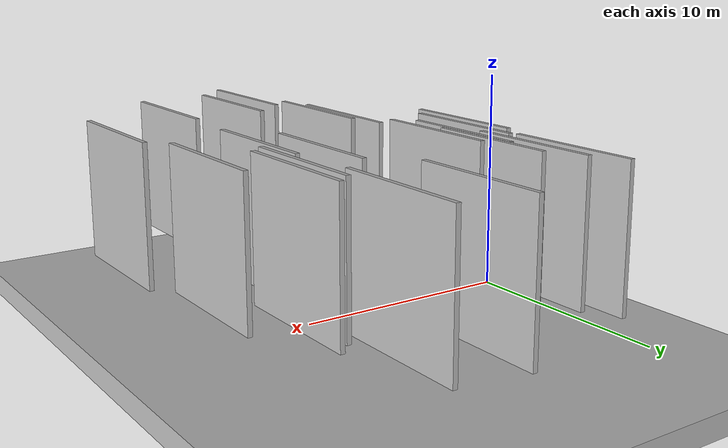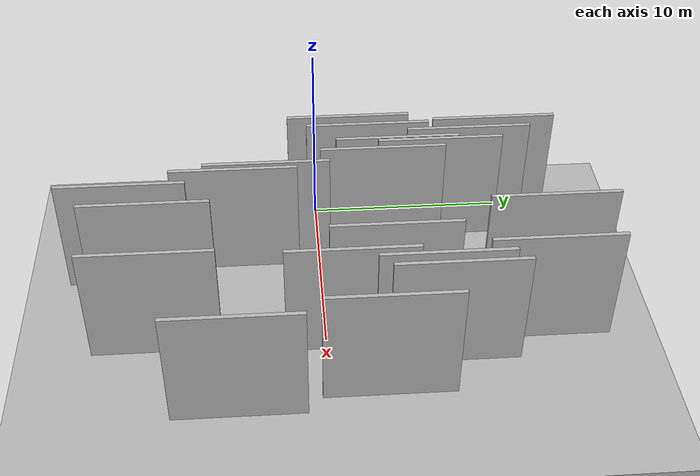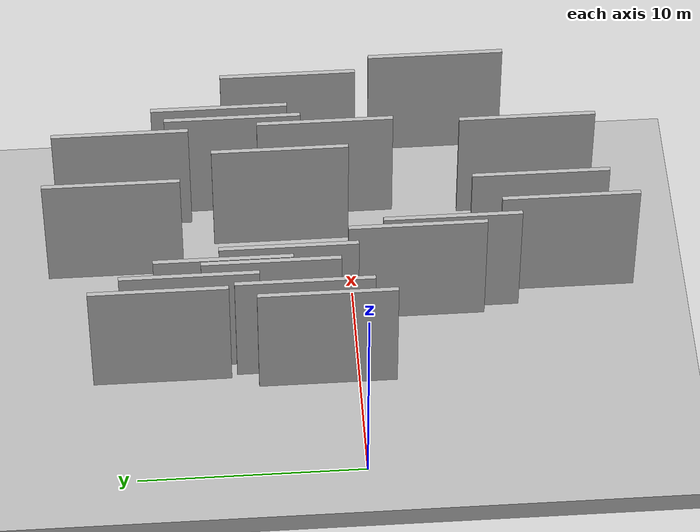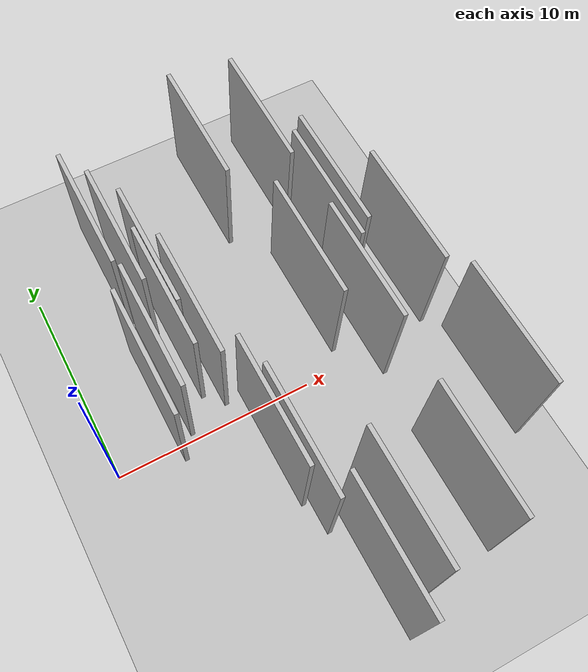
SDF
<?xml version="1.0" encoding="utf-8"?>

<sdf version="1.6">

   <world name="default">

      <gui fullscreen="0">

         <camera name="user_camera">

            <pose>-15 0 4.57585 0 0 0</pose>

            <view_controller>orbit</view_controller>

         </camera>

      </gui>

      <scene>

         <sky>

           <clouds>

             <speed>12</speed>

           </clouds>

         </sky>

         <ambient>0.4 0.4 0.4 1</ambient>

         <background>0.7 0.7 0.7 1</background>

         <shadows>1</shadows>

      </scene>

      <gravity>0 0 -9.8066</gravity>

      <magnetic_field>6e-06 2.3e-05 -4.2e-05</magnetic_field>

      <physics default="0" name="default_physics" type="ode">

         <ode>

            <solver>

               <type>quick</type>

               <iters>10</iters>

               <sor>1.0</sor>

               <use_dynamic_moi_rescaling>0</use_dynamic_moi_rescaling>

            </solver>

            <constraints>

               <cfm>0</cfm>

               <erp>0.2</erp>

               <contact_max_correcting_vel>100</contact_max_correcting_vel>

               <contact_surface_layer>0.001</contact_surface_layer>

            </constraints>

         </ode>

         <max_step_size>0.004</max_step_size>

         <real_time_factor>1</real_time_factor>

         <real_time_update_rate>250</real_time_update_rate>

      </physics>

      <light name="sun" type="directional">

         <cast_shadows>1</cast_shadows>

         <pose>0 0 10 0 0 0</pose>

         <diffuse>0.8 0.8 0.8 1</diffuse>

         <specular>0.2 0.2 0.2 1</specular>

         <attenuation>

            <range>1000</range>

            <constant>0.9</constant>

            <linear>0.01</linear>

            <quadratic>0.001</quadratic>

         </attenuation>

         <direction>-0.5 0.1 -0.9</direction>

      </light>

      <include>

         <name>ground_plane_1</name>

         <uri>model://HANNAS_ground_plane</uri>

         <pose>0 0 0  0 0 0</pose>

      </include>

      <include>

         <name>ground_plane_2</name>

         <uri>model://HANNAS_ground_plane</uri>

         <pose>100 0 0  0 0 0</pose>

      </include>

      <model name="HANNAS_wall_1">

         <static>1</static>

         <pose frame="">5.1587 5.8665 2.5 0.000000 0.000000 1.570796</pose>

         <link name="link">

            <pose frame="">0 0 3.00 0 0 0</pose>

            <collision name="collision">

               <geometry>

                  <box>

                     <size>6.00 0.2 6.00</size>

                  </box>

               </geometry>

               <max_contacts>10</max_contacts>

               <surface>

                  <contact>

                     <ode/>

                  </contact>

                  <bounce/>

                  <friction>

                     <torsional>

                        <ode/>

                     </torsional>

                     <ode/>

                  </friction>

               </surface>

            </collision>

            <visual name="visual">

               <cast_shadows>0</cast_shadows>

               <geometry>

                  <box>

                     <size>6.00 0.2 6.00</size>

                  </box>

               </geometry>

               <material>

                  <script>

                     <uri>model://HANNAS_wall/materials/scripts</uri>

                     <uri>model://HANNAS_wall/materials/textures</uri>

                     <name>vrc/HANNAS_wall</name>

                  </script>

               </material>

            </visual>

            <self_collide>0</self_collide>

            <enable_wind>0</enable_wind>

            <kinematic>0</kinematic>

         </link>

      </model>

      <model name="HANNAS_wall_2">

         <static>1</static>

         <pose frame="">6.9605 -4.1079 2.5 0.000000 0.000000 1.570796</pose>

         <link name="link">

            <pose frame="">0 0 3.00 0 0 0</pose>

            <collision name="collision">

               <geometry>

                  <box>

                     <size>6.00 0.2 6.00</size>

                  </box>

               </geometry>

               <max_contacts>10</max_contacts>

               <surface>

                  <contact>

                     <ode/>

                  </contact>

                  <bounce/>

                  <friction>

                     <torsional>

                        <ode/>

                     </torsional>

                     <ode/>

                  </friction>

               </surface>

            </collision>

            <visual name="visual">

               <cast_shadows>0</cast_shadows>

               <geometry>

                  <box>

                     <size>6.00 0.2 6.00</size>

                  </box>

               </geometry>

               <material>

                  <script>

                     <uri>model://HANNAS_wall/materials/scripts</uri>

                     <uri>model://HANNAS_wall/materials/textures</uri>

                     <name>vrc/HANNAS_wall</name>

                  </script>

               </material>

            </visual>

            <self_collide>0</self_collide>

            <enable_wind>0</enable_wind>

            <kinematic>0</kinematic>

         </link>

      </model>

      <model name="HANNAS_wall_3">

         <static>1</static>

         <pose frame="">3.0186 1.5339 2.5 0.000000 0.000000 1.570796</pose>

         <link name="link">

            <pose frame="">0 0 3.00 0 0 0</pose>

            <collision name="collision">

               <geometry>

                  <box>

                     <size>6.00 0.2 6.00</size>

                  </box>

               </geometry>

               <max_contacts>10</max_contacts>

               <surface>

                  <contact>

                     <ode/>

                  </contact>

                  <bounce/>

                  <friction>

                     <torsional>

                        <ode/>

                     </torsional>

                     <ode/>

                  </friction>

               </surface>

            </collision>

            <visual name="visual">

               <cast_shadows>0</cast_shadows>

               <geometry>

                  <box>

                     <size>6.00 0.2 6.00</size>

                  </box>

               </geometry>

               <material>

                  <script>

                     <uri>model://HANNAS_wall/materials/scripts</uri>

                     <uri>model://HANNAS_wall/materials/textures</uri>

                     <name>vrc/HANNAS_wall</name>

                  </script>

               </material>

            </visual>

            <self_collide>0</self_collide>

            <enable_wind>0</enable_wind>

            <kinematic>0</kinematic>

         </link>

      </model>

      <model name="HANNAS_wall_4">

         <static>1</static>

         <pose frame="">9.2179 -8.1273 2.5 0.000000 0.000000 1.570796</pose>

         <link name="link">

            <pose frame="">0 0 3.00 0 0 0</pose>

            <collision name="collision">

               <geometry>

                  <box>

                     <size>6.00 0.2 6.00</size>

                  </box>

               </geometry>

               <max_contacts>10</max_contacts>

               <surface>

                  <contact>

                     <ode/>

                  </contact>

                  <bounce/>

                  <friction>

                     <torsional>

                        <ode/>

                     </torsional>

                     <ode/>

                  </friction>

               </surface>

            </collision>

            <visual name="visual">

               <cast_shadows>0</cast_shadows>

               <geometry>

                  <box>

                     <size>6.00 0.2 6.00</size>

                  </box>

               </geometry>

               <material>

                  <script>

                     <uri>model://HANNAS_wall/materials/scripts</uri>

                     <uri>model://HANNAS_wall/materials/textures</uri>

                     <name>vrc/HANNAS_wall</name>

                  </script>

               </material>

            </visual>

            <self_collide>0</self_collide>

            <enable_wind>0</enable_wind>

            <kinematic>0</kinematic>

         </link>

      </model>

      <model name="HANNAS_wall_5">

         <static>1</static>

         <pose frame="">12.8485 1.0567 2.5 0.000000 0.000000 1.570796</pose>

         <link name="link">

            <pose frame="">0 0 3.00 0 0 0</pose>

            <collision name="collision">

               <geometry>

                  <box>

                     <size>6.00 0.2 6.00</size>

                  </box>

               </geometry>

               <max_contacts>10</max_contacts>

               <surface>

                  <contact>

                     <ode/>

                  </contact>

                  <bounce/>

                  <friction>

                     <torsional>

                        <ode/>

                     </torsional>

                     <ode/>

                  </friction>

               </surface>

            </collision>

            <visual name="visual">

               <cast_shadows>0</cast_shadows>

               <geometry>

                  <box>

                     <size>6.00 0.2 6.00</size>

                  </box>

               </geometry>

               <material>

                  <script>

                     <uri>model://HANNAS_wall/materials/scripts</uri>

                     <uri>model://HANNAS_wall/materials/textures</uri>

                     <name>vrc/HANNAS_wall</name>

                  </script>

               </material>

            </visual>

            <self_collide>0</self_collide>

            <enable_wind>0</enable_wind>

            <kinematic>0</kinematic>

         </link>

      </model>

      <model name="HANNAS_wall_6">

         <static>1</static>

         <pose frame="">6.5647 -2.5653 2.5 0.000000 0.000000 1.570796</pose>

         <link name="link">

            <pose frame="">0 0 3.00 0 0 0</pose>

            <collision name="collision">

               <geometry>

                  <box>

                     <size>6.00 0.2 6.00</size>

                  </box>

               </geometry>

               <max_contacts>10</max_contacts>

               <surface>

                  <contact>

                     <ode/>

                  </contact>

                  <bounce/>

                  <friction>

                     <torsional>

                        <ode/>

                     </torsional>

                     <ode/>

                  </friction>

               </surface>

            </collision>

            <visual name="visual">

               <cast_shadows>0</cast_shadows>

               <geometry>

                  <box>

                     <size>6.00 0.2 6.00</size>

                  </box>

               </geometry>

               <material>

                  <script>

                     <uri>model://HANNAS_wall/materials/scripts</uri>

                     <uri>model://HANNAS_wall/materials/textures</uri>

                     <name>vrc/HANNAS_wall</name>

                  </script>

               </material>

            </visual>

            <self_collide>0</self_collide>

            <enable_wind>0</enable_wind>

            <kinematic>0</kinematic>

         </link>

      </model>

      <model name="HANNAS_wall_7">

         <static>1</static>

         <pose frame="">3.7384 2.4550 2.5 0.000000 0.000000 1.570796</pose>

         <link name="link">

            <pose frame="">0 0 3.00 0 0 0</pose>

            <collision name="collision">

               <geometry>

                  <box>

                     <size>6.00 0.2 6.00</size>

                  </box>

               </geometry>

               <max_contacts>10</max_contacts>

               <surface>

                  <contact>

                     <ode/>

                  </contact>

                  <bounce/>

                  <friction>

                     <torsional>

                        <ode/>

                     </torsional>

                     <ode/>

                  </friction>

               </surface>

            </collision>

            <visual name="visual">

               <cast_shadows>0</cast_shadows>

               <geometry>

                  <box>

                     <size>6.00 0.2 6.00</size>

                  </box>

               </geometry>

               <material>

                  <script>

                     <uri>model://HANNAS_wall/materials/scripts</uri>

                     <uri>model://HANNAS_wall/materials/textures</uri>

                     <name>vrc/HANNAS_wall</name>

                  </script>

               </material>

            </visual>

            <self_collide>0</self_collide>

            <enable_wind>0</enable_wind>

            <kinematic>0</kinematic>

         </link>

      </model>

      <model name="HANNAS_wall_8">

         <static>1</static>

         <pose frame="">3.5596 8.6978 2.5 0.000000 0.000000 1.570796</pose>

         <link name="link">

            <pose frame="">0 0 3.00 0 0 0</pose>

            <collision name="collision">

               <geometry>

                  <box>

                     <size>6.00 0.2 6.00</size>

                  </box>

               </geometry>

               <max_contacts>10</max_contacts>

               <surface>

                  <contact>

                     <ode/>

                  </contact>

                  <bounce/>

                  <friction>

                     <torsional>

                        <ode/>

                     </torsional>

                     <ode/>

                  </friction>

               </surface>

            </collision>

            <visual name="visual">

               <cast_shadows>0</cast_shadows>

               <geometry>

                  <box>

                     <size>6.00 0.2 6.00</size>

                  </box>

               </geometry>

               <material>

                  <script>

                     <uri>model://HANNAS_wall/materials/scripts</uri>

                     <uri>model://HANNAS_wall/materials/textures</uri>

                     <name>vrc/HANNAS_wall</name>

                  </script>

               </material>

            </visual>

            <self_collide>0</self_collide>

            <enable_wind>0</enable_wind>

            <kinematic>0</kinematic>

         </link>

      </model>

      <model name="HANNAS_wall_9">

         <static>1</static>

         <pose frame="">7.8035 -9.3064 2.5 0.000000 0.000000 1.570796</pose>

         <link name="link">

            <pose frame="">0 0 3.00 0 0 0</pose>

            <collision name="collision">

               <geometry>

                  <box>

                     <size>6.00 0.2 6.00</size>

                  </box>

               </geometry>

               <max_contacts>10</max_contacts>

               <surface>

                  <contact>

                     <ode/>

                  </contact>

                  <bounce/>

                  <friction>

                     <torsional>

                        <ode/>

                     </torsional>

                     <ode/>

                  </friction>

               </surface>

            </collision>

            <visual name="visual">

               <cast_shadows>0</cast_shadows>

               <geometry>

                  <box>

                     <size>6.00 0.2 6.00</size>

                  </box>

               </geometry>

               <material>

                  <script>

                     <uri>model://HANNAS_wall/materials/scripts</uri>

                     <uri>model://HANNAS_wall/materials/textures</uri>

                     <name>vrc/HANNAS_wall</name>

                  </script>

               </material>

            </visual>

            <self_collide>0</self_collide>

            <enable_wind>0</enable_wind>

            <kinematic>0</kinematic>

         </link>

      </model>

      <model name="HANNAS_wall_10">

         <static>1</static>

         <pose frame="">11.3080 3.1218 2.5 0.000000 0.000000 1.570796</pose>

         <link name="link">

            <pose frame="">0 0 3.00 0 0 0</pose>

            <collision name="collision">

               <geometry>

                  <box>

                     <size>6.00 0.2 6.00</size>

                  </box>

               </geometry>

               <max_contacts>10</max_contacts>

               <surface>

                  <contact>

                     <ode/>

                  </contact>

                  <bounce/>

                  <friction>

                     <torsional>

                        <ode/>

                     </torsional>

                     <ode/>

                  </friction>

               </surface>

            </collision>

            <visual name="visual">

               <cast_shadows>0</cast_shadows>

               <geometry>

                  <box>

                     <size>6.00 0.2 6.00</size>

                  </box>

               </geometry>

               <material>

                  <script>

                     <uri>model://HANNAS_wall/materials/scripts</uri>

                     <uri>model://HANNAS_wall/materials/textures</uri>

                     <name>vrc/HANNAS_wall</name>

                  </script>

               </material>

            </visual>

            <self_collide>0</self_collide>

            <enable_wind>0</enable_wind>

            <kinematic>0</kinematic>

         </link>

      </model>

      <model name="HANNAS_wall_11">

         <static>1</static>

         <pose frame="">13.9393 5.6763 2.5 0.000000 0.000000 1.570796</pose>

         <link name="link">

            <pose frame="">0 0 3.00 0 0 0</pose>

            <collision name="collision">

               <geometry>

                  <box>

                     <size>6.00 0.2 6.00</size>

                  </box>

               </geometry>

               <max_contacts>10</max_contacts>

               <surface>

                  <contact>

                     <ode/>

                  </contact>

                  <bounce/>

                  <friction>

                     <torsional>

                        <ode/>

                     </torsional>

                     <ode/>

                  </friction>

               </surface>

            </collision>

            <visual name="visual">

               <cast_shadows>0</cast_shadows>

               <geometry>

                  <box>

                     <size>6.00 0.2 6.00</size>

                  </box>

               </geometry>

               <material>

                  <script>

                     <uri>model://HANNAS_wall/materials/scripts</uri>

                     <uri>model://HANNAS_wall/materials/textures</uri>

                     <name>vrc/HANNAS_wall</name>

                  </script>

               </material>

            </visual>

            <self_collide>0</self_collide>

            <enable_wind>0</enable_wind>

            <kinematic>0</kinematic>

         </link>

      </model>

      <model name="HANNAS_wall_12">

         <static>1</static>

         <pose frame="">15.7667 2.5458 2.5 0.000000 0.000000 1.570796</pose>

         <link name="link">

            <pose frame="">0 0 3.00 0 0 0</pose>

            <collision name="collision">

               <geometry>

                  <box>

                     <size>6.00 0.2 6.00</size>

                  </box>

               </geometry>

               <max_contacts>10</max_contacts>

               <surface>

                  <contact>

                     <ode/>

                  </contact>

                  <bounce/>

                  <friction>

                     <torsional>

                        <ode/>

                     </torsional>

                     <ode/>

                  </friction>

               </surface>

            </collision>

            <visual name="visual">

               <cast_shadows>0</cast_shadows>

               <geometry>

                  <box>

                     <size>6.00 0.2 6.00</size>

                  </box>

               </geometry>

               <material>

                  <script>

                     <uri>model://HANNAS_wall/materials/scripts</uri>

                     <uri>model://HANNAS_wall/materials/textures</uri>

                     <name>vrc/HANNAS_wall</name>

                  </script>

               </material>

            </visual>

            <self_collide>0</self_collide>

            <enable_wind>0</enable_wind>

            <kinematic>0</kinematic>

         </link>

      </model>

      <model name="HANNAS_wall_13">

         <static>1</static>

         <pose frame="">13.3102 5.1180 2.5 0.000000 0.000000 1.570796</pose>

         <link name="link">

            <pose frame="">0 0 3.00 0 0 0</pose>

            <collision name="collision">

               <geometry>

                  <box>

                     <size>6.00 0.2 6.00</size>

                  </box>

               </geometry>

               <max_contacts>10</max_contacts>

               <surface>

                  <contact>

                     <ode/>

                  </contact>

                  <bounce/>

                  <friction>

                     <torsional>

                        <ode/>

                     </torsional>

                     <ode/>

                  </friction>

               </surface>

            </collision>

            <visual name="visual">

               <cast_shadows>0</cast_shadows>

               <geometry>

                  <box>

                     <size>6.00 0.2 6.00</size>

                  </box>

               </geometry>

               <material>

                  <script>

                     <uri>model://HANNAS_wall/materials/scripts</uri>

                     <uri>model://HANNAS_wall/materials/textures</uri>

                     <name>vrc/HANNAS_wall</name>

                  </script>

               </material>

            </visual>

            <self_collide>0</self_collide>

            <enable_wind>0</enable_wind>

            <kinematic>0</kinematic>

         </link>

      </model>

      <model name="HANNAS_wall_14">

         <static>1</static>

         <pose frame="">12.6598 10.0769 2.5 0.000000 0.000000 1.570796</pose>

         <link name="link">

            <pose frame="">0 0 3.00 0 0 0</pose>

            <collision name="collision">

               <geometry>

                  <box>

                     <size>6.00 0.2 6.00</size>

                  </box>

               </geometry>

               <max_contacts>10</max_contacts>

               <surface>

                  <contact>

                     <ode/>

                  </contact>

                  <bounce/>

                  <friction>

                     <torsional>

                        <ode/>

                     </torsional>

                     <ode/>

                  </friction>

               </surface>

            </collision>

            <visual name="visual">

               <cast_shadows>0</cast_shadows>

               <geometry>

                  <box>

                     <size>6.00 0.2 6.00</size>

                  </box>

               </geometry>

               <material>

                  <script>

                     <uri>model://HANNAS_wall/materials/scripts</uri>

                     <uri>model://HANNAS_wall/materials/textures</uri>

                     <name>vrc/HANNAS_wall</name>

                  </script>

               </material>

            </visual>

            <self_collide>0</self_collide>

            <enable_wind>0</enable_wind>

            <kinematic>0</kinematic>

         </link>

      </model>

      <model name="HANNAS_wall_15">

         <static>1</static>

         <pose frame="">16.5736 -4.1058 2.5 0.000000 0.000000 1.570796</pose>

         <link name="link">

            <pose frame="">0 0 3.00 0 0 0</pose>

            <collision name="collision">

               <geometry>

                  <box>

                     <size>6.00 0.2 6.00</size>

                  </box>

               </geometry>

               <max_contacts>10</max_contacts>

               <surface>

                  <contact>

                     <ode/>

                  </contact>

                  <bounce/>

                  <friction>

                     <torsional>

                        <ode/>

                     </torsional>

                     <ode/>

                  </friction>

               </surface>

            </collision>

            <visual name="visual">

               <cast_shadows>0</cast_shadows>

               <geometry>

                  <box>

                     <size>6.00 0.2 6.00</size>

                  </box>

               </geometry>

               <material>

                  <script>

                     <uri>model://HANNAS_wall/materials/scripts</uri>

                     <uri>model://HANNAS_wall/materials/textures</uri>

                     <name>vrc/HANNAS_wall</name>

                  </script>

               </material>

            </visual>

            <self_collide>0</self_collide>

            <enable_wind>0</enable_wind>

            <kinematic>0</kinematic>

         </link>

      </model>

      <model name="HANNAS_wall_16">

         <static>1</static>

         <pose frame="">4.3274 7.3568 2.5 0.000000 0.000000 1.570796</pose>

         <link name="link">

            <pose frame="">0 0 3.00 0 0 0</pose>

            <collision name="collision">

               <geometry>

                  <box>

                     <size>6.00 0.2 6.00</size>

                  </box>

               </geometry>

               <max_contacts>10</max_contacts>

               <surface>

                  <contact>

                     <ode/>

                  </contact>

                  <bounce/>

                  <friction>

                     <torsional>

                        <ode/>

                     </torsional>

                     <ode/>

                  </friction>

               </surface>

            </collision>

            <visual name="visual">

               <cast_shadows>0</cast_shadows>

               <geometry>

                  <box>

                     <size>6.00 0.2 6.00</size>

                  </box>

               </geometry>

               <material>

                  <script>

                     <uri>model://HANNAS_wall/materials/scripts</uri>

                     <uri>model://HANNAS_wall/materials/textures</uri>

                     <name>vrc/HANNAS_wall</name>

                  </script>

               </material>

            </visual>

            <self_collide>0</self_collide>

            <enable_wind>0</enable_wind>

            <kinematic>0</kinematic>

         </link>

      </model>

      <model name="HANNAS_wall_17">

         <static>1</static>

         <pose frame="">12.5583 -7.8421 2.5 0.000000 0.000000 1.570796</pose>

         <link name="link">

            <pose frame="">0 0 3.00 0 0 0</pose>

            <collision name="collision">

               <geometry>

                  <box>

                     <size>6.00 0.2 6.00</size>

                  </box>

               </geometry>

               <max_contacts>10</max_contacts>

               <surface>

                  <contact>

                     <ode/>

                  </contact>

                  <bounce/>

                  <friction>

                     <torsional>

                        <ode/>

                     </torsional>

                     <ode/>

                  </friction>

               </surface>

            </collision>

            <visual name="visual">

               <cast_shadows>0</cast_shadows>

               <geometry>

                  <box>

                     <size>6.00 0.2 6.00</size>

                  </box>

               </geometry>

               <material>

                  <script>

                     <uri>model://HANNAS_wall/materials/scripts</uri>

                     <uri>model://HANNAS_wall/materials/textures</uri>

                     <name>vrc/HANNAS_wall</name>

                  </script>

               </material>

            </visual>

            <self_collide>0</self_collide>

            <enable_wind>0</enable_wind>

            <kinematic>0</kinematic>

         </link>

      </model>

      <model name="HANNAS_wall_18">

         <static>1</static>

         <pose frame="">9.7341 10.5441 2.5 0.000000 0.000000 1.570796</pose>

         <link name="link">

            <pose frame="">0 0 3.00 0 0 0</pose>

            <collision name="collision">

               <geometry>

                  <box>

                     <size>6.00 0.2 6.00</size>

                  </box>

               </geometry>

               <max_contacts>10</max_contacts>

               <surface>

                  <contact>

                     <ode/>

                  </contact>

                  <bounce/>

                  <friction>

                     <torsional>

                        <ode/>

                     </torsional>

                     <ode/>

                  </friction>

               </surface>

            </collision>

            <visual name="visual">

               <cast_shadows>0</cast_shadows>

               <geometry>

                  <box>

                     <size>6.00 0.2 6.00</size>

                  </box>

               </geometry>

               <material>

                  <script>

                     <uri>model://HANNAS_wall/materials/scripts</uri>

                     <uri>model://HANNAS_wall/materials/textures</uri>

                     <name>vrc/HANNAS_wall</name>

                  </script>

               </material>

            </visual>

            <self_collide>0</self_collide>

            <enable_wind>0</enable_wind>

            <kinematic>0</kinematic>

         </link>

      </model>

      <model name="HANNAS_wall_19">

         <static>1</static>

         <pose frame="">4.9330 3.8317 2.5 0.000000 0.000000 1.570796</pose>

         <link name="link">

            <pose frame="">0 0 3.00 0 0 0</pose>

            <collision name="collision">

               <geometry>

                  <box>

                     <size>6.00 0.2 6.00</size>

                  </box>

               </geometry>

               <max_contacts>10</max_contacts>

               <surface>

                  <contact>

                     <ode/>

                  </contact>

                  <bounce/>

                  <friction>

                     <torsional>

                        <ode/>

                     </torsional>

                     <ode/>

                  </friction>

               </surface>

            </collision>

            <visual name="visual">

               <cast_shadows>0</cast_shadows>

               <geometry>

                  <box>

                     <size>6.00 0.2 6.00</size>

                  </box>

               </geometry>

               <material>

                  <script>

                     <uri>model://HANNAS_wall/materials/scripts</uri>

                     <uri>model://HANNAS_wall/materials/textures</uri>

                     <name>vrc/HANNAS_wall</name>

                  </script>

               </material>

            </visual>

            <self_collide>0</self_collide>

            <enable_wind>0</enable_wind>

            <kinematic>0</kinematic>

         </link>

      </model>

      <model name="HANNAS_wall_20">

         <static>1</static>

         <pose frame="">5.7165 3.0356 2.5 0.000000 0.000000 1.570796</pose>

         <link name="link">

            <pose frame="">0 0 3.00 0 0 0</pose>

            <collision name="collision">

               <geometry>

                  <box>

                     <size>6.00 0.2 6.00</size>

                  </box>

               </geometry>

               <max_contacts>10</max_contacts>

               <surface>

                  <contact>

                     <ode/>

                  </contact>

                  <bounce/>

                  <friction>

                     <torsional>

                        <ode/>

                     </torsional>

                     <ode/>

                  </friction>

               </surface>

            </collision>

            <visual name="visual">

               <cast_shadows>0</cast_shadows>

               <geometry>

                  <box>

                     <size>6.00 0.2 6.00</size>

                  </box>

               </geometry>

               <material>

                  <script>

                     <uri>model://HANNAS_wall/materials/scripts</uri>

                     <uri>model://HANNAS_wall/materials/textures</uri>

                     <name>vrc/HANNAS_wall</name>

                  </script>

               </material>

            </visual>

            <self_collide>0</self_collide>

            <enable_wind>0</enable_wind>

            <kinematic>0</kinematic>

         </link>

      </model>

   </world>

</sdf>

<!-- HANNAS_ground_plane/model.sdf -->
<sdf version="1.4">
<model name="HANNAS_ground_plane">
  <static>true</static>
    <link name="link">
      <collision name="collision">
        <geometry>
          <plane>
            <normal>0 0 1</normal>
            <size>1000 1000</size>
          </plane>
        </geometry>
        <surface>
          <friction>
            <ode>
              <mu>100</mu>
              <mu2>50</mu2>
            </ode>
          </friction>
        </surface>
      </collision>
      <visual name="visual">
        <cast_shadows>false</cast_shadows>
        <geometry>
          <plane>
            <normal>0 0 1</normal>
            <size>1000 1000</size>
          </plane>
        </geometry>
        <material>
          <script>
            <uri>model://HANNAS_ground_plane/materials/scripts/HANNAS_ground_plane.material</uri>
	    <uri>model://HANNAS_ground_plane/materials/textures</uri>
            <name>HANNASGroundPlane/Image</name>
          </script>
        </material>
      </visual>
    </link>
  </model>
</sdf>
